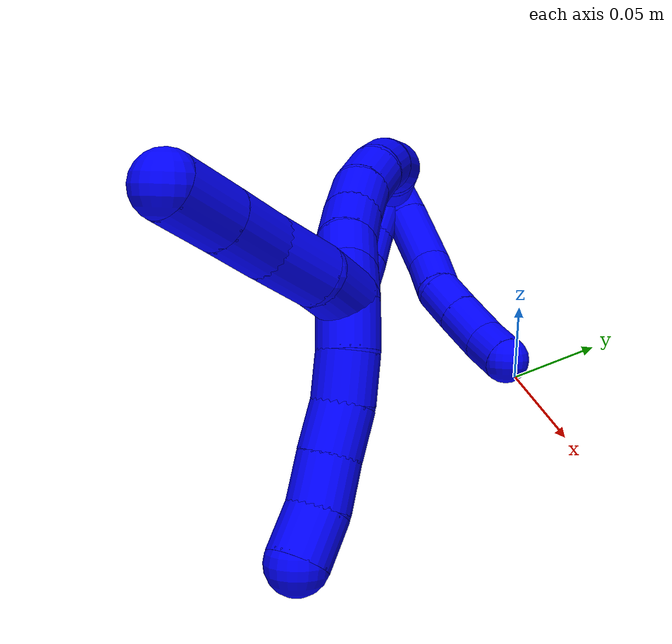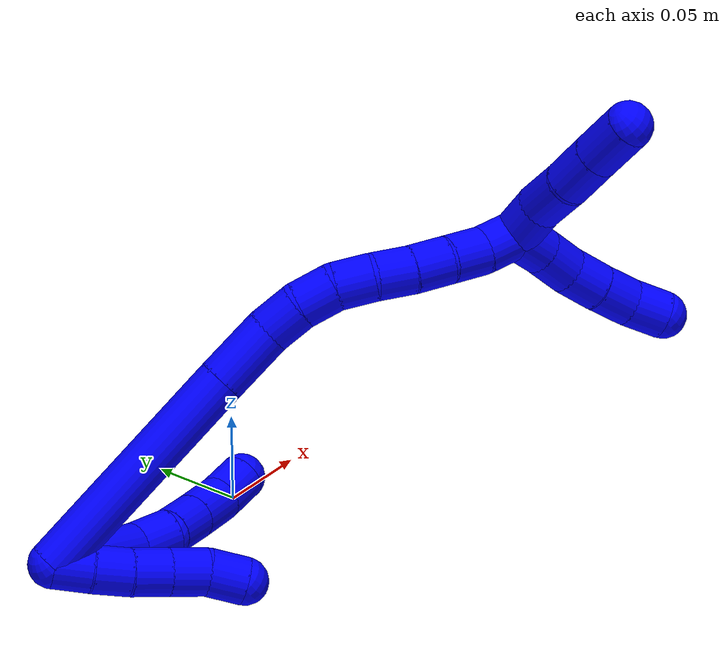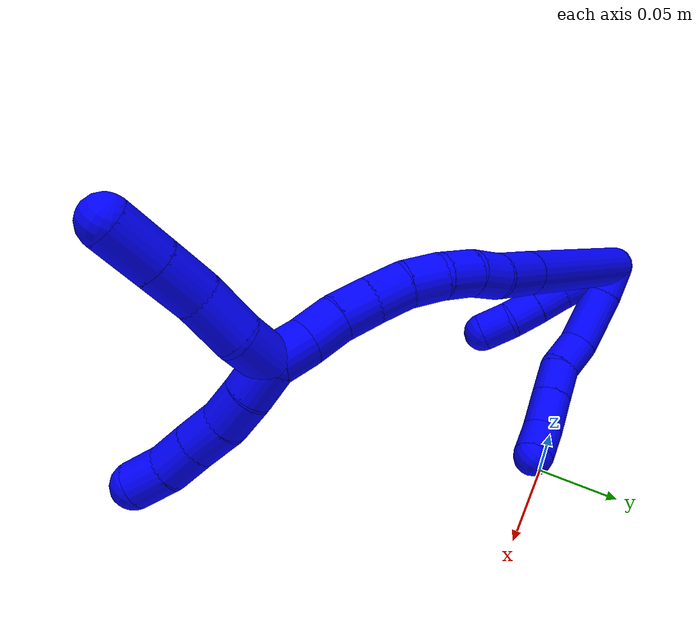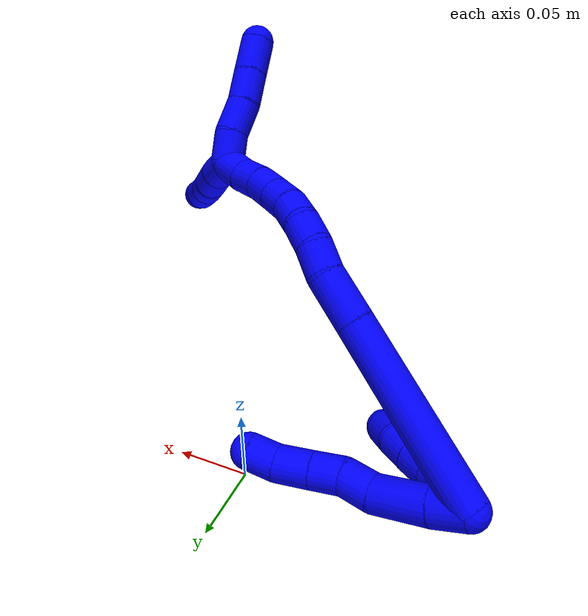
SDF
<sdf version="1.7">
 <world name="default">
  <model name="1">
   <static>0</static>
   <link name="1">
    <collision name="collision-cylinder-e_1_2_8">
     <pose>0.007035 0.00235 -0.008774 -2.87991 0.658958 -2.40685</pose>
     <geometry><cylinder><radius>0.0125</radius><length>0.022978</length></cylinder></geometry>
     <surface>
      <friction><ode><mu>1.16</mu><mu2>1.16</mu2><slip1>0</slip1><slip2>0</slip2></ode></friction>
      <contact><ode><kp>1e+06</kp><kd>1</kd><max_vel>0</max_vel><min_depth>0.001</min_depth></ode></contact>
     </surface>
    </collision>
    <visual name="visual-cylinder-e_1_2_8">
     <pose>0.007035 0.00235 -0.008774 -2.87991 0.658958 -2.40685</pose>
     <geometry><cylinder><radius>0.0125</radius><length>0.022978</length></cylinder></geometry>
     <material><ambient>0 0 1 1</ambient></material>
    </visual>
    <collision name="collision-cylinder-e_2_8_9">
     <pose>0.026515 0.006937 -0.031574 -2.98342 0.719561 -2.72628</pose>
     <geometry><cylinder><radius>0.0125</radius><length>0.037769</length></cylinder></geometry>
     <surface>
      <friction><ode><mu>1.16</mu><mu2>1.16</mu2><slip1>0</slip1><slip2>0</slip2></ode></friction>
      <contact><ode><kp>1e+06</kp><kd>1</kd><max_vel>0</max_vel><min_depth>0.001</min_depth></ode></contact>
     </surface>
    </collision>
    <visual name="visual-cylinder-e_2_8_9">
     <pose>0.026515 0.006937 -0.031574 -2.98342 0.719561 -2.72628</pose>
     <geometry><cylinder><radius>0.0125</radius><length>0.037769</length></cylinder></geometry>
     <material><ambient>0 0 1 1</ambient></material>
    </visual>
    <collision name="collision-cylinder-e_3_9_10">
     <pose>0.047963 0.008152 -0.052252 2.98902 0.928774 2.83875</pose>
     <geometry><cylinder><radius>0.0125</radius><length>0.022479</length></cylinder></geometry>
     <surface>
      <friction><ode><mu>1.16</mu><mu2>1.16</mu2><slip1>0</slip1><slip2>0</slip2></ode></friction>
      <contact><ode><kp>1e+06</kp><kd>1</kd><max_vel>0</max_vel><min_depth>0.001</min_depth></ode></contact>
     </surface>
    </collision>
    <visual name="visual-cylinder-e_3_9_10">
     <pose>0.047963 0.008152 -0.052252 2.98902 0.928774 2.83875</pose>
     <geometry><cylinder><radius>0.0125</radius><length>0.022479</length></cylinder></geometry>
     <material><ambient>0 0 1 1</ambient></material>
    </visual>
    <collision name="collision-cylinder-e_4_10_11">
     <pose>0.065292 0.009802 -0.064951 -2.72537 0.899784 -2.31715</pose>
     <geometry><cylinder><radius>0.0125</radius><length>0.021265</length></cylinder></geometry>
     <surface>
      <friction><ode><mu>1.16</mu><mu2>1.16</mu2><slip1>0</slip1><slip2>0</slip2></ode></friction>
      <contact><ode><kp>1e+06</kp><kd>1</kd><max_vel>0</max_vel><min_depth>0.001</min_depth></ode></contact>
     </surface>
    </collision>
    <visual name="visual-cylinder-e_4_10_11">
     <pose>0.065292 0.009802 -0.064951 -2.72537 0.899784 -2.31715</pose>
     <geometry><cylinder><radius>0.0125</radius><length>0.021265</length></cylinder></geometry>
     <material><ambient>0 0 1 1</ambient></material>
    </visual>
    <collision name="collision-cylinder-e_5_11_12">
     <pose>0.083612 0.015632 -0.077795 -2.70672 0.927309 -2.30947</pose>
     <geometry><cylinder><radius>0.0125</radius><length>0.024981</length></cylinder></geometry>
     <surface>
      <friction><ode><mu>1.16</mu><mu2>1.16</mu2><slip1>0</slip1><slip2>0</slip2></ode></friction>
      <contact><ode><kp>1e+06</kp><kd>1</kd><max_vel>0</max_vel><min_depth>0.001</min_depth></ode></contact>
     </surface>
    </collision>
    <visual name="visual-cylinder-e_5_11_12">
     <pose>0.083612 0.015632 -0.077795 -2.70672 0.927309 -2.30947</pose>
     <geometry><cylinder><radius>0.0125</radius><length>0.024981</length></cylinder></geometry>
     <material><ambient>0 0 1 1</ambient></material>
    </visual>
    <collision name="collision-cylinder-e_6_12_6">
     <pose>0.102989 0.020128 -0.088526 -2.81369 1.1539 -2.64375</pose>
     <geometry><cylinder><radius>0.0125</radius><length>0.020527</length></cylinder></geometry>
     <surface>
      <friction><ode><mu>1.16</mu><mu2>1.16</mu2><slip1>0</slip1><slip2>0</slip2></ode></friction>
      <contact><ode><kp>1e+06</kp><kd>1</kd><max_vel>0</max_vel><min_depth>0.001</min_depth></ode></contact>
     </surface>
    </collision>
    <visual name="visual-cylinder-e_6_12_6">
     <pose>0.102989 0.020128 -0.088526 -2.81369 1.1539 -2.64375</pose>
     <geometry><cylinder><radius>0.0125</radius><length>0.020527</length></cylinder></geometry>
     <material><ambient>0 0 1 1</ambient></material>
    </visual>
    <collision name="collision-cylinder-e_1_2_13">
     <pose>0.004158 -0.005128 -0.007511 2.54255 0.428807 1.22832</pose>
     <geometry><cylinder><radius>0.0125</radius><length>0.02</length></cylinder></geometry>
     <surface>
      <friction><ode><mu>1.16</mu><mu2>1.16</mu2><slip1>0</slip1><slip2>0</slip2></ode></friction>
      <contact><ode><kp>1e+06</kp><kd>1</kd><max_vel>0</max_vel><min_depth>0.001</min_depth></ode></contact>
     </surface>
    </collision>
    <visual name="visual-cylinder-e_1_2_13">
     <pose>0.004158 -0.005128 -0.007511 2.54255 0.428807 1.22832</pose>
     <geometry><cylinder><radius>0.0125</radius><length>0.02</length></cylinder></geometry>
     <material><ambient>0 0 1 1</ambient></material>
    </visual>
    <collision name="collision-cylinder-e_2_13_14">
     <pose>0.012977 -0.014766 -0.022634 2.60675 0.484868 1.4685</pose>
     <geometry><cylinder><radius>0.0125</radius><length>0.02</length></cylinder></geometry>
     <surface>
      <friction><ode><mu>1.16</mu><mu2>1.16</mu2><slip1>0</slip1><slip2>0</slip2></ode></friction>
      <contact><ode><kp>1e+06</kp><kd>1</kd><max_vel>0</max_vel><min_depth>0.001</min_depth></ode></contact>
     </surface>
    </collision>
    <visual name="visual-cylinder-e_2_13_14">
     <pose>0.012977 -0.014766 -0.022634 2.60675 0.484868 1.4685</pose>
     <geometry><cylinder><radius>0.0125</radius><length>0.02</length></cylinder></geometry>
     <material><ambient>0 0 1 1</ambient></material>
    </visual>
    <collision name="collision-cylinder-e_3_14_15">
     <pose>0.023086 -0.023362 -0.037568 2.63249 0.576204 1.70052</pose>
     <geometry><cylinder><radius>0.0125</radius><length>0.02</length></cylinder></geometry>
     <surface>
      <friction><ode><mu>1.16</mu><mu2>1.16</mu2><slip1>0</slip1><slip2>0</slip2></ode></friction>
      <contact><ode><kp>1e+06</kp><kd>1</kd><max_vel>0</max_vel><min_depth>0.001</min_depth></ode></contact>
     </surface>
    </collision>
    <visual name="visual-cylinder-e_3_14_15">
     <pose>0.023086 -0.023362 -0.037568 2.63249 0.576204 1.70052</pose>
     <geometry><cylinder><radius>0.0125</radius><length>0.02</length></cylinder></geometry>
     <material><ambient>0 0 1 1</ambient></material>
    </visual>
    <collision name="collision-cylinder-e_4_15_16">
     <pose>0.033892 -0.031894 -0.052069 2.58724 0.565457 1.59169</pose>
     <geometry><cylinder><radius>0.0125</radius><length>0.02</length></cylinder></geometry>
     <surface>
      <friction><ode><mu>1.16</mu><mu2>1.16</mu2><slip1>0</slip1><slip2>0</slip2></ode></friction>
      <contact><ode><kp>1e+06</kp><kd>1</kd><max_vel>0</max_vel><min_depth>0.001</min_depth></ode></contact>
     </surface>
    </collision>
    <visual name="visual-cylinder-e_4_15_16">
     <pose>0.033892 -0.031894 -0.052069 2.58724 0.565457 1.59169</pose>
     <geometry><cylinder><radius>0.0125</radius><length>0.02</length></cylinder></geometry>
     <material><ambient>0 0 1 1</ambient></material>
    </visual>
    <collision name="collision-cylinder-e_5_16_5">
     <pose>0.042385 -0.041432 -0.067262 2.57546 0.318782 1.00977</pose>
     <geometry><cylinder><radius>0.0125</radius><length>0.02</length></cylinder></geometry>
     <surface>
      <friction><ode><mu>1.16</mu><mu2>1.16</mu2><slip1>0</slip1><slip2>0</slip2></ode></friction>
      <contact><ode><kp>1e+06</kp><kd>1</kd><max_vel>0</max_vel><min_depth>0.001</min_depth></ode></contact>
     </surface>
    </collision>
    <visual name="visual-cylinder-e_5_16_5">
     <pose>0.042385 -0.041432 -0.067262 2.57546 0.318782 1.00977</pose>
     <geometry><cylinder><radius>0.0125</radius><length>0.02</length></cylinder></geometry>
     <material><ambient>0 0 1 1</ambient></material>
    </visual>
    <collision name="collision-cylinder-e_1_2_17">
     <pose>0.057682 -0.02414 0.001893 1.49252 1.17335 1.10225</pose>
     <geometry><cylinder><radius>0.0125</radius><length>0.125116</length></cylinder></geometry>
     <surface>
      <friction><ode><mu>1.16</mu><mu2>1.16</mu2><slip1>0</slip1><slip2>0</slip2></ode></friction>
      <contact><ode><kp>1e+06</kp><kd>1</kd><max_vel>0</max_vel><min_depth>0.001</min_depth></ode></contact>
     </surface>
    </collision>
    <visual name="visual-cylinder-e_1_2_17">
     <pose>0.057682 -0.02414 0.001893 1.49252 1.17335 1.10225</pose>
     <geometry><cylinder><radius>0.0125</radius><length>0.125116</length></cylinder></geometry>
     <material><ambient>0 0 1 1</ambient></material>
    </visual>
    <collision name="collision-cylinder-e_2_17_18">
     <pose>0.131139 -0.05495 0.004052 1.53109 1.17047 1.13419</pose>
     <geometry><cylinder><radius>0.0125</radius><length>0.034259</length></cylinder></geometry>
     <surface>
      <friction><ode><mu>1.16</mu><mu2>1.16</mu2><slip1>0</slip1><slip2>0</slip2></ode></friction>
      <contact><ode><kp>1e+06</kp><kd>1</kd><max_vel>0</max_vel><min_depth>0.001</min_depth></ode></contact>
     </surface>
    </collision>
    <visual name="visual-cylinder-e_2_17_18">
     <pose>0.131139 -0.05495 0.004052 1.53109 1.17047 1.13419</pose>
     <geometry><cylinder><radius>0.0125</radius><length>0.034259</length></cylinder></geometry>
     <material><ambient>0 0 1 1</ambient></material>
    </visual>
    <collision name="collision-cylinder-e_3_18_19">
     <pose>0.155313 -0.067552 0.004344 1.56622 0.955907 0.952176</pose>
     <geometry><cylinder><radius>0.0125</radius><length>0.020565</length></cylinder></geometry>
     <surface>
      <friction><ode><mu>1.16</mu><mu2>1.16</mu2><slip1>0</slip1><slip2>0</slip2></ode></friction>
      <contact><ode><kp>1e+06</kp><kd>1</kd><max_vel>0</max_vel><min_depth>0.001</min_depth></ode></contact>
     </surface>
    </collision>
    <visual name="visual-cylinder-e_3_18_19">
     <pose>0.155313 -0.067552 0.004344 1.56622 0.955907 0.952176</pose>
     <geometry><cylinder><radius>0.0125</radius><length>0.020565</length></cylinder></geometry>
     <material><ambient>0 0 1 1</ambient></material>
    </visual>
    <collision name="collision-cylinder-e_4_19_20">
     <pose>0.171654 -0.079183 0.002193 1.93584 0.915689 1.24257</pose>
     <geometry><cylinder><radius>0.0125</radius><length>0.020029</length></cylinder></geometry>
     <surface>
      <friction><ode><mu>1.16</mu><mu2>1.16</mu2><slip1>0</slip1><slip2>0</slip2></ode></friction>
      <contact><ode><kp>1e+06</kp><kd>1</kd><max_vel>0</max_vel><min_depth>0.001</min_depth></ode></contact>
     </surface>
    </collision>
    <visual name="visual-cylinder-e_4_19_20">
     <pose>0.171654 -0.079183 0.002193 1.93584 0.915689 1.24257</pose>
     <geometry><cylinder><radius>0.0125</radius><length>0.020029</length></cylinder></geometry>
     <material><ambient>0 0 1 1</ambient></material>
    </visual>
    <collision name="collision-cylinder-e_5_20_21">
     <pose>0.186323 -0.090768 -0.004477 2.22273 0.737605 1.32632</pose>
     <geometry><cylinder><radius>0.0125</radius><length>0.020009</length></cylinder></geometry>
     <surface>
      <friction><ode><mu>1.16</mu><mu2>1.16</mu2><slip1>0</slip1><slip2>0</slip2></ode></friction>
      <contact><ode><kp>1e+06</kp><kd>1</kd><max_vel>0</max_vel><min_depth>0.001</min_depth></ode></contact>
     </surface>
    </collision>
    <visual name="visual-cylinder-e_5_20_21">
     <pose>0.186323 -0.090768 -0.004477 2.22273 0.737605 1.32632</pose>
     <geometry><cylinder><radius>0.0125</radius><length>0.020009</length></cylinder></geometry>
     <material><ambient>0 0 1 1</ambient></material>
    </visual>
    <collision name="collision-cylinder-e_6_21_22">
     <pose>0.199889 -0.101075 -0.014793 2.49221 0.751877 1.72938</pose>
     <geometry><cylinder><radius>0.0125</radius><length>0.020022</length></cylinder></geometry>
     <surface>
      <friction><ode><mu>1.16</mu><mu2>1.16</mu2><slip1>0</slip1><slip2>0</slip2></ode></friction>
      <contact><ode><kp>1e+06</kp><kd>1</kd><max_vel>0</max_vel><min_depth>0.001</min_depth></ode></contact>
     </surface>
    </collision>
    <visual name="visual-cylinder-e_6_21_22">
     <pose>0.199889 -0.101075 -0.014793 2.49221 0.751877 1.72938</pose>
     <geometry><cylinder><radius>0.0125</radius><length>0.020022</length></cylinder></geometry>
     <material><ambient>0 0 1 1</ambient></material>
    </visual>
    <collision name="collision-cylinder-e_7_22_23">
     <pose>0.214139 -0.109443 -0.026046 2.51304 0.834922 1.87671</pose>
     <geometry><cylinder><radius>0.0125</radius><length>0.02</length></cylinder></geometry>
     <surface>
      <friction><ode><mu>1.16</mu><mu2>1.16</mu2><slip1>0</slip1><slip2>0</slip2></ode></friction>
      <contact><ode><kp>1e+06</kp><kd>1</kd><max_vel>0</max_vel><min_depth>0.001</min_depth></ode></contact>
     </surface>
    </collision>
    <visual name="visual-cylinder-e_7_22_23">
     <pose>0.214139 -0.109443 -0.026046 2.51304 0.834922 1.87671</pose>
     <geometry><cylinder><radius>0.0125</radius><length>0.02</length></cylinder></geometry>
     <material><ambient>0 0 1 1</ambient></material>
    </visual>
    <collision name="collision-cylinder-e_8_23_24">
     <pose>0.229105 -0.115964 -0.037502 2.73783 0.85621 2.29836</pose>
     <geometry><cylinder><radius>0.0125</radius><length>0.02</length></cylinder></geometry>
     <surface>
      <friction><ode><mu>1.16</mu><mu2>1.16</mu2><slip1>0</slip1><slip2>0</slip2></ode></friction>
      <contact><ode><kp>1e+06</kp><kd>1</kd><max_vel>0</max_vel><min_depth>0.001</min_depth></ode></contact>
     </surface>
    </collision>
    <visual name="visual-cylinder-e_8_23_24">
     <pose>0.229105 -0.115964 -0.037502 2.73783 0.85621 2.29836</pose>
     <geometry><cylinder><radius>0.0125</radius><length>0.02</length></cylinder></geometry>
     <material><ambient>0 0 1 1</ambient></material>
    </visual>
    <collision name="collision-cylinder-e_9_24_1">
     <pose>0.245128 -0.121498 -0.047946 2.55129 1.01019 2.13613</pose>
     <geometry><cylinder><radius>0.0125</radius><length>0.02</length></cylinder></geometry>
     <surface>
      <friction><ode><mu>1.16</mu><mu2>1.16</mu2><slip1>0</slip1><slip2>0</slip2></ode></friction>
      <contact><ode><kp>1e+06</kp><kd>1</kd><max_vel>0</max_vel><min_depth>0.001</min_depth></ode></contact>
     </surface>
    </collision>
    <visual name="visual-cylinder-e_9_24_1">
     <pose>0.245128 -0.121498 -0.047946 2.55129 1.01019 2.13613</pose>
     <geometry><cylinder><radius>0.0125</radius><length>0.02</length></cylinder></geometry>
     <material><ambient>0 0 1 1</ambient></material>
    </visual>
    <collision name="collision-cylinder-e_1_1_25">
     <pose>0.25573 -0.124941 -0.062121 3.09217 0.214954 2.69121</pose>
     <geometry><cylinder><radius>0.0125</radius><length>0.02</length></cylinder></geometry>
     <surface>
      <friction><ode><mu>1.16</mu><mu2>1.16</mu2><slip1>0</slip1><slip2>0</slip2></ode></friction>
      <contact><ode><kp>1e+06</kp><kd>1</kd><max_vel>0</max_vel><min_depth>0.001</min_depth></ode></contact>
     </surface>
    </collision>
    <visual name="visual-cylinder-e_1_1_25">
     <pose>0.25573 -0.124941 -0.062121 3.09217 0.214954 2.69121</pose>
     <geometry><cylinder><radius>0.0125</radius><length>0.02</length></cylinder></geometry>
     <material><ambient>0 0 1 1</ambient></material>
    </visual>
    <collision name="collision-cylinder-e_2_25_26">
     <pose>0.25909 -0.126614 -0.081731 3.02136 0.122963 1.59331</pose>
     <geometry><cylinder><radius>0.0125</radius><length>0.02</length></cylinder></geometry>
     <surface>
      <friction><ode><mu>1.16</mu><mu2>1.16</mu2><slip1>0</slip1><slip2>0</slip2></ode></friction>
      <contact><ode><kp>1e+06</kp><kd>1</kd><max_vel>0</max_vel><min_depth>0.001</min_depth></ode></contact>
     </surface>
    </collision>
    <visual name="visual-cylinder-e_2_25_26">
     <pose>0.25909 -0.126614 -0.081731 3.02136 0.122963 1.59331</pose>
     <geometry><cylinder><radius>0.0125</radius><length>0.02</length></cylinder></geometry>
     <material><ambient>0 0 1 1</ambient></material>
    </visual>
    <collision name="collision-cylinder-e_3_26_27">
     <pose>0.261925 -0.130824 -0.100981 2.83057 0.161536 0.953193</pose>
     <geometry><cylinder><radius>0.0125</radius><length>0.02</length></cylinder></geometry>
     <surface>
      <friction><ode><mu>1.16</mu><mu2>1.16</mu2><slip1>0</slip1><slip2>0</slip2></ode></friction>
      <contact><ode><kp>1e+06</kp><kd>1</kd><max_vel>0</max_vel><min_depth>0.001</min_depth></ode></contact>
     </surface>
    </collision>
    <visual name="visual-cylinder-e_3_26_27">
     <pose>0.261925 -0.130824 -0.100981 2.83057 0.161536 0.953193</pose>
     <geometry><cylinder><radius>0.0125</radius><length>0.02</length></cylinder></geometry>
     <material><ambient>0 0 1 1</ambient></material>
    </visual>
    <collision name="collision-cylinder-e_4_27_28">
     <pose>0.265727 -0.136576 -0.119743 2.85784 0.22123 1.32184</pose>
     <geometry><cylinder><radius>0.0125</radius><length>0.02</length></cylinder></geometry>
     <surface>
      <friction><ode><mu>1.16</mu><mu2>1.16</mu2><slip1>0</slip1><slip2>0</slip2></ode></friction>
      <contact><ode><kp>1e+06</kp><kd>1</kd><max_vel>0</max_vel><min_depth>0.001</min_depth></ode></contact>
     </surface>
    </collision>
    <visual name="visual-cylinder-e_4_27_28">
     <pose>0.265727 -0.136576 -0.119743 2.85784 0.22123 1.32184</pose>
     <geometry><cylinder><radius>0.0125</radius><length>0.02</length></cylinder></geometry>
     <material><ambient>0 0 1 1</ambient></material>
    </visual>
    <collision name="collision-cylinder-e_5_28_4">
     <pose>0.270432 -0.143847 -0.137659 2.65352 0.253734 0.946814</pose>
     <geometry><cylinder><radius>0.0125</radius><length>0.02</length></cylinder></geometry>
     <surface>
      <friction><ode><mu>1.16</mu><mu2>1.16</mu2><slip1>0</slip1><slip2>0</slip2></ode></friction>
      <contact><ode><kp>1e+06</kp><kd>1</kd><max_vel>0</max_vel><min_depth>0.001</min_depth></ode></contact>
     </surface>
    </collision>
    <visual name="visual-cylinder-e_5_28_4">
     <pose>0.270432 -0.143847 -0.137659 2.65352 0.253734 0.946814</pose>
     <geometry><cylinder><radius>0.0125</radius><length>0.02</length></cylinder></geometry>
     <material><ambient>0 0 1 1</ambient></material>
    </visual>
    <collision name="collision-cylinder-e_1_1_29">
     <pose>0.259709 -0.132955 -0.047726 1.07132 0.563147 0.34006</pose>
     <geometry><cylinder><radius>0.0125</radius><length>0.022896</length></cylinder></geometry>
     <surface>
      <friction><ode><mu>1.16</mu><mu2>1.16</mu2><slip1>0</slip1><slip2>0</slip2></ode></friction>
      <contact><ode><kp>1e+06</kp><kd>1</kd><max_vel>0</max_vel><min_depth>0.001</min_depth></ode></contact>
     </surface>
    </collision>
    <visual name="visual-cylinder-e_1_1_29">
     <pose>0.259709 -0.132955 -0.047726 1.07132 0.563147 0.34006</pose>
     <geometry><cylinder><radius>0.0125</radius><length>0.022896</length></cylinder></geometry>
     <material><ambient>0 0 1 1</ambient></material>
    </visual>
    <collision name="collision-cylinder-e_2_29_30">
     <pose>0.269891 -0.152583 -0.037892 1.13387 0.320006 0.204771</pose>
     <geometry><cylinder><radius>0.0125</radius><length>0.025883</length></cylinder></geometry>
     <surface>
      <friction><ode><mu>1.16</mu><mu2>1.16</mu2><slip1>0</slip1><slip2>0</slip2></ode></friction>
      <contact><ode><kp>1e+06</kp><kd>1</kd><max_vel>0</max_vel><min_depth>0.001</min_depth></ode></contact>
     </surface>
    </collision>
    <visual name="visual-cylinder-e_2_29_30">
     <pose>0.269891 -0.152583 -0.037892 1.13387 0.320006 0.204771</pose>
     <geometry><cylinder><radius>0.0125</radius><length>0.025883</length></cylinder></geometry>
     <material><ambient>0 0 1 1</ambient></material>
    </visual>
    <collision name="collision-cylinder-e_3_30_31">
     <pose>0.279603 -0.1735 -0.028144 1.13567 0.481623 0.31079</pose>
     <geometry><cylinder><radius>0.0125</radius><length>0.024354</length></cylinder></geometry>
     <surface>
      <friction><ode><mu>1.16</mu><mu2>1.16</mu2><slip1>0</slip1><slip2>0</slip2></ode></friction>
      <contact><ode><kp>1e+06</kp><kd>1</kd><max_vel>0</max_vel><min_depth>0.001</min_depth></ode></contact>
     </surface>
    </collision>
    <visual name="visual-cylinder-e_3_30_31">
     <pose>0.279603 -0.1735 -0.028144 1.13567 0.481623 0.31079</pose>
     <geometry><cylinder><radius>0.0125</radius><length>0.024354</length></cylinder></geometry>
     <material><ambient>0 0 1 1</ambient></material>
    </visual>
    <collision name="collision-cylinder-e_4_31_3">
     <pose>0.291373 -0.194171 -0.018654 1.14464 0.473814 0.308623</pose>
     <geometry><cylinder><radius>0.0125</radius><length>0.026867</length></cylinder></geometry>
     <surface>
      <friction><ode><mu>1.16</mu><mu2>1.16</mu2><slip1>0</slip1><slip2>0</slip2></ode></friction>
      <contact><ode><kp>1e+06</kp><kd>1</kd><max_vel>0</max_vel><min_depth>0.001</min_depth></ode></contact>
     </surface>
    </collision>
    <visual name="visual-cylinder-e_4_31_3">
     <pose>0.291373 -0.194171 -0.018654 1.14464 0.473814 0.308623</pose>
     <geometry><cylinder><radius>0.0125</radius><length>0.026867</length></cylinder></geometry>
     <material><ambient>0 0 1 1</ambient></material>
    </visual>
    <collision name="collision-sphere-3">
     <pose>0.297503 -0.205055 -0.013713 0 -0 0</pose>
     <geometry><sphere><radius>0.0125</radius></sphere></geometry>
     <surface>
      <friction><ode><mu>1.16</mu><mu2>1.16</mu2><slip1>0</slip1><slip2>0</slip2></ode></friction>
      <contact><ode><kp>1e+06</kp><kd>1</kd><max_vel>0</max_vel><min_depth>0.001</min_depth></ode></contact>
     </surface>
    </collision>
    <visual name="visual-sphere-3">
     <pose>0.297503 -0.205055 -0.013713 0 -0 0</pose>
     <geometry><sphere><radius>0.0125</radius></sphere></geometry>
     <material><ambient>0 0 1 1</ambient></material>
    </visual>
    <collision name="collision-sphere-31">
     <pose>0.285244 -0.183286 -0.023595 0 -0 0</pose>
     <geometry><sphere><radius>0.0125</radius></sphere></geometry>
     <surface>
      <friction><ode><mu>1.16</mu><mu2>1.16</mu2><slip1>0</slip1><slip2>0</slip2></ode></friction>
      <contact><ode><kp>1e+06</kp><kd>1</kd><max_vel>0</max_vel><min_depth>0.001</min_depth></ode></contact>
     </surface>
    </collision>
    <visual name="visual-sphere-31">
     <pose>0.285244 -0.183286 -0.023595 0 -0 0</pose>
     <geometry><sphere><radius>0.0125</radius></sphere></geometry>
     <material><ambient>0 0 1 1</ambient></material>
    </visual>
    <collision name="collision-sphere-30">
     <pose>0.273962 -0.163713 -0.032693 0 -0 0</pose>
     <geometry><sphere><radius>0.0125</radius></sphere></geometry>
     <surface>
      <friction><ode><mu>1.16</mu><mu2>1.16</mu2><slip1>0</slip1><slip2>0</slip2></ode></friction>
      <contact><ode><kp>1e+06</kp><kd>1</kd><max_vel>0</max_vel><min_depth>0.001</min_depth></ode></contact>
     </surface>
    </collision>
    <visual name="visual-sphere-30">
     <pose>0.273962 -0.163713 -0.032693 0 -0 0</pose>
     <geometry><sphere><radius>0.0125</radius></sphere></geometry>
     <material><ambient>0 0 1 1</ambient></material>
    </visual>
    <collision name="collision-sphere-29">
     <pose>0.26582 -0.141453 -0.04309 0 -0 0</pose>
     <geometry><sphere><radius>0.0125</radius></sphere></geometry>
     <surface>
      <friction><ode><mu>1.16</mu><mu2>1.16</mu2><slip1>0</slip1><slip2>0</slip2></ode></friction>
      <contact><ode><kp>1e+06</kp><kd>1</kd><max_vel>0</max_vel><min_depth>0.001</min_depth></ode></contact>
     </surface>
    </collision>
    <visual name="visual-sphere-29">
     <pose>0.26582 -0.141453 -0.04309 0 -0 0</pose>
     <geometry><sphere><radius>0.0125</radius></sphere></geometry>
     <material><ambient>0 0 1 1</ambient></material>
    </visual>
    <collision name="collision-sphere-4">
     <pose>0.272942 -0.148386 -0.146208 0 -0 0</pose>
     <geometry><sphere><radius>0.0125</radius></sphere></geometry>
     <surface>
      <friction><ode><mu>1.16</mu><mu2>1.16</mu2><slip1>0</slip1><slip2>0</slip2></ode></friction>
      <contact><ode><kp>1e+06</kp><kd>1</kd><max_vel>0</max_vel><min_depth>0.001</min_depth></ode></contact>
     </surface>
    </collision>
    <visual name="visual-sphere-4">
     <pose>0.272942 -0.148386 -0.146208 0 -0 0</pose>
     <geometry><sphere><radius>0.0125</radius></sphere></geometry>
     <material><ambient>0 0 1 1</ambient></material>
    </visual>
    <collision name="collision-sphere-28">
     <pose>0.267922 -0.139308 -0.129109 0 -0 0</pose>
     <geometry><sphere><radius>0.0125</radius></sphere></geometry>
     <surface>
      <friction><ode><mu>1.16</mu><mu2>1.16</mu2><slip1>0</slip1><slip2>0</slip2></ode></friction>
      <contact><ode><kp>1e+06</kp><kd>1</kd><max_vel>0</max_vel><min_depth>0.001</min_depth></ode></contact>
     </surface>
    </collision>
    <visual name="visual-sphere-28">
     <pose>0.267922 -0.139308 -0.129109 0 -0 0</pose>
     <geometry><sphere><radius>0.0125</radius></sphere></geometry>
     <material><ambient>0 0 1 1</ambient></material>
    </visual>
    <collision name="collision-sphere-27">
     <pose>0.263533 -0.133845 -0.110377 0 -0 0</pose>
     <geometry><sphere><radius>0.0125</radius></sphere></geometry>
     <surface>
      <friction><ode><mu>1.16</mu><mu2>1.16</mu2><slip1>0</slip1><slip2>0</slip2></ode></friction>
      <contact><ode><kp>1e+06</kp><kd>1</kd><max_vel>0</max_vel><min_depth>0.001</min_depth></ode></contact>
     </surface>
    </collision>
    <visual name="visual-sphere-27">
     <pose>0.263533 -0.133845 -0.110377 0 -0 0</pose>
     <geometry><sphere><radius>0.0125</radius></sphere></geometry>
     <material><ambient>0 0 1 1</ambient></material>
    </visual>
    <collision name="collision-sphere-26">
     <pose>0.260316 -0.127804 -0.091584 0 -0 0</pose>
     <geometry><sphere><radius>0.0125</radius></sphere></geometry>
     <surface>
      <friction><ode><mu>1.16</mu><mu2>1.16</mu2><slip1>0</slip1><slip2>0</slip2></ode></friction>
      <contact><ode><kp>1e+06</kp><kd>1</kd><max_vel>0</max_vel><min_depth>0.001</min_depth></ode></contact>
     </surface>
    </collision>
    <visual name="visual-sphere-26">
     <pose>0.260316 -0.127804 -0.091584 0 -0 0</pose>
     <geometry><sphere><radius>0.0125</radius></sphere></geometry>
     <material><ambient>0 0 1 1</ambient></material>
    </visual>
    <collision name="collision-sphere-25">
     <pose>0.257863 -0.125423 -0.071879 0 -0 0</pose>
     <geometry><sphere><radius>0.0125</radius></sphere></geometry>
     <surface>
      <friction><ode><mu>1.16</mu><mu2>1.16</mu2><slip1>0</slip1><slip2>0</slip2></ode></friction>
      <contact><ode><kp>1e+06</kp><kd>1</kd><max_vel>0</max_vel><min_depth>0.001</min_depth></ode></contact>
     </surface>
    </collision>
    <visual name="visual-sphere-25">
     <pose>0.257863 -0.125423 -0.071879 0 -0 0</pose>
     <geometry><sphere><radius>0.0125</radius></sphere></geometry>
     <material><ambient>0 0 1 1</ambient></material>
    </visual>
    <collision name="collision-sphere-1">
     <pose>0.253597 -0.124458 -0.052363 0 -0 0</pose>
     <geometry><sphere><radius>0.0125</radius></sphere></geometry>
     <surface>
      <friction><ode><mu>1.16</mu><mu2>1.16</mu2><slip1>0</slip1><slip2>0</slip2></ode></friction>
      <contact><ode><kp>1e+06</kp><kd>1</kd><max_vel>0</max_vel><min_depth>0.001</min_depth></ode></contact>
     </surface>
    </collision>
    <visual name="visual-sphere-1">
     <pose>0.253597 -0.124458 -0.052363 0 -0 0</pose>
     <geometry><sphere><radius>0.0125</radius></sphere></geometry>
     <material><ambient>0 0 1 1</ambient></material>
    </visual>
    <collision name="collision-sphere-24">
     <pose>0.236659 -0.118539 -0.043528 0 -0 0</pose>
     <geometry><sphere><radius>0.0125</radius></sphere></geometry>
     <surface>
      <friction><ode><mu>1.16</mu><mu2>1.16</mu2><slip1>0</slip1><slip2>0</slip2></ode></friction>
      <contact><ode><kp>1e+06</kp><kd>1</kd><max_vel>0</max_vel><min_depth>0.001</min_depth></ode></contact>
     </surface>
    </collision>
    <visual name="visual-sphere-24">
     <pose>0.236659 -0.118539 -0.043528 0 -0 0</pose>
     <geometry><sphere><radius>0.0125</radius></sphere></geometry>
     <material><ambient>0 0 1 1</ambient></material>
    </visual>
    <collision name="collision-sphere-23">
     <pose>0.221551 -0.11339 -0.031476 0 -0 0</pose>
     <geometry><sphere><radius>0.0125</radius></sphere></geometry>
     <surface>
      <friction><ode><mu>1.16</mu><mu2>1.16</mu2><slip1>0</slip1><slip2>0</slip2></ode></friction>
      <contact><ode><kp>1e+06</kp><kd>1</kd><max_vel>0</max_vel><min_depth>0.001</min_depth></ode></contact>
     </surface>
    </collision>
    <visual name="visual-sphere-23">
     <pose>0.221551 -0.11339 -0.031476 0 -0 0</pose>
     <geometry><sphere><radius>0.0125</radius></sphere></geometry>
     <material><ambient>0 0 1 1</ambient></material>
    </visual>
    <collision name="collision-sphere-22">
     <pose>0.206726 -0.105496 -0.020617 0 -0 0</pose>
     <geometry><sphere><radius>0.0125</radius></sphere></geometry>
     <surface>
      <friction><ode><mu>1.16</mu><mu2>1.16</mu2><slip1>0</slip1><slip2>0</slip2></ode></friction>
      <contact><ode><kp>1e+06</kp><kd>1</kd><max_vel>0</max_vel><min_depth>0.001</min_depth></ode></contact>
     </surface>
    </collision>
    <visual name="visual-sphere-22">
     <pose>0.206726 -0.105496 -0.020617 0 -0 0</pose>
     <geometry><sphere><radius>0.0125</radius></sphere></geometry>
     <material><ambient>0 0 1 1</ambient></material>
    </visual>
    <collision name="collision-sphere-21">
     <pose>0.193051 -0.096653 -0.008969 0 -0 0</pose>
     <geometry><sphere><radius>0.0125</radius></sphere></geometry>
     <surface>
      <friction><ode><mu>1.16</mu><mu2>1.16</mu2><slip1>0</slip1><slip2>0</slip2></ode></friction>
      <contact><ode><kp>1e+06</kp><kd>1</kd><max_vel>0</max_vel><min_depth>0.001</min_depth></ode></contact>
     </surface>
    </collision>
    <visual name="visual-sphere-21">
     <pose>0.193051 -0.096653 -0.008969 0 -0 0</pose>
     <geometry><sphere><radius>0.0125</radius></sphere></geometry>
     <material><ambient>0 0 1 1</ambient></material>
    </visual>
    <collision name="collision-sphere-12">
     <pose>0.093604 0.018789 -0.084591 0 -0 0</pose>
     <geometry><sphere><radius>0.0125</radius></sphere></geometry>
     <surface>
      <friction><ode><mu>1.16</mu><mu2>1.16</mu2><slip1>0</slip1><slip2>0</slip2></ode></friction>
      <contact><ode><kp>1e+06</kp><kd>1</kd><max_vel>0</max_vel><min_depth>0.001</min_depth></ode></contact>
     </surface>
    </collision>
    <visual name="visual-sphere-12">
     <pose>0.093604 0.018789 -0.084591 0 -0 0</pose>
     <geometry><sphere><radius>0.0125</radius></sphere></geometry>
     <material><ambient>0 0 1 1</ambient></material>
    </visual>
    <collision name="collision-sphere-11">
     <pose>0.073619 0.012475 -0.070998 0 -0 0</pose>
     <geometry><sphere><radius>0.0125</radius></sphere></geometry>
     <surface>
      <friction><ode><mu>1.16</mu><mu2>1.16</mu2><slip1>0</slip1><slip2>0</slip2></ode></friction>
      <contact><ode><kp>1e+06</kp><kd>1</kd><max_vel>0</max_vel><min_depth>0.001</min_depth></ode></contact>
     </surface>
    </collision>
    <visual name="visual-sphere-11">
     <pose>0.073619 0.012475 -0.070998 0 -0 0</pose>
     <geometry><sphere><radius>0.0125</radius></sphere></geometry>
     <material><ambient>0 0 1 1</ambient></material>
    </visual>
    <collision name="collision-sphere-10">
     <pose>0.056964 0.007129 -0.058905 0 -0 0</pose>
     <geometry><sphere><radius>0.0125</radius></sphere></geometry>
     <surface>
      <friction><ode><mu>1.16</mu><mu2>1.16</mu2><slip1>0</slip1><slip2>0</slip2></ode></friction>
      <contact><ode><kp>1e+06</kp><kd>1</kd><max_vel>0</max_vel><min_depth>0.001</min_depth></ode></contact>
     </surface>
    </collision>
    <visual name="visual-sphere-10">
     <pose>0.056964 0.007129 -0.058905 0 -0 0</pose>
     <geometry><sphere><radius>0.0125</radius></sphere></geometry>
     <material><ambient>0 0 1 1</ambient></material>
    </visual>
    <collision name="collision-sphere-9">
     <pose>0.038961 0.009174 -0.0456 0 -0 0</pose>
     <geometry><sphere><radius>0.0125</radius></sphere></geometry>
     <surface>
      <friction><ode><mu>1.16</mu><mu2>1.16</mu2><slip1>0</slip1><slip2>0</slip2></ode></friction>
      <contact><ode><kp>1e+06</kp><kd>1</kd><max_vel>0</max_vel><min_depth>0.001</min_depth></ode></contact>
     </surface>
    </collision>
    <visual name="visual-sphere-9">
     <pose>0.038961 0.009174 -0.0456 0 -0 0</pose>
     <geometry><sphere><radius>0.0125</radius></sphere></geometry>
     <material><ambient>0 0 1 1</ambient></material>
    </visual>
    <collision name="collision-sphere-2">
     <geometry><sphere><radius>0.0125</radius></sphere></geometry>
     <surface>
      <friction><ode><mu>1.16</mu><mu2>1.16</mu2><slip1>0</slip1><slip2>0</slip2></ode></friction>
      <contact><ode><kp>1e+06</kp><kd>1</kd><max_vel>0</max_vel><min_depth>0.001</min_depth></ode></contact>
     </surface>
    </collision>
    <visual name="visual-sphere-2">
     <geometry><sphere><radius>0.0125</radius></sphere></geometry>
     <material><ambient>0 0 1 1</ambient></material>
    </visual>
    <collision name="collision-sphere-19">
     <pose>0.163713 -0.073484 0.004371 0 -0 0</pose>
     <geometry><sphere><radius>0.0125</radius></sphere></geometry>
     <surface>
      <friction><ode><mu>1.16</mu><mu2>1.16</mu2><slip1>0</slip1><slip2>0</slip2></ode></friction>
      <contact><ode><kp>1e+06</kp><kd>1</kd><max_vel>0</max_vel><min_depth>0.001</min_depth></ode></contact>
     </surface>
    </collision>
    <visual name="visual-sphere-19">
     <pose>0.163713 -0.073484 0.004371 0 -0 0</pose>
     <geometry><sphere><radius>0.0125</radius></sphere></geometry>
     <material><ambient>0 0 1 1</ambient></material>
    </visual>
    <collision name="collision-sphere-8">
     <pose>0.014069 0.0047 -0.017549 0 -0 0</pose>
     <geometry><sphere><radius>0.0125</radius></sphere></geometry>
     <surface>
      <friction><ode><mu>1.16</mu><mu2>1.16</mu2><slip1>0</slip1><slip2>0</slip2></ode></friction>
      <contact><ode><kp>1e+06</kp><kd>1</kd><max_vel>0</max_vel><min_depth>0.001</min_depth></ode></contact>
     </surface>
    </collision>
    <visual name="visual-sphere-8">
     <pose>0.014069 0.0047 -0.017549 0 -0 0</pose>
     <geometry><sphere><radius>0.0125</radius></sphere></geometry>
     <material><ambient>0 0 1 1</ambient></material>
    </visual>
    <collision name="collision-sphere-6">
     <pose>0.112373 0.021466 -0.09246 0 -0 0</pose>
     <geometry><sphere><radius>0.0125</radius></sphere></geometry>
     <surface>
      <friction><ode><mu>1.16</mu><mu2>1.16</mu2><slip1>0</slip1><slip2>0</slip2></ode></friction>
      <contact><ode><kp>1e+06</kp><kd>1</kd><max_vel>0</max_vel><min_depth>0.001</min_depth></ode></contact>
     </surface>
    </collision>
    <visual name="visual-sphere-6">
     <pose>0.112373 0.021466 -0.09246 0 -0 0</pose>
     <geometry><sphere><radius>0.0125</radius></sphere></geometry>
     <material><ambient>0 0 1 1</ambient></material>
    </visual>
    <collision name="collision-sphere-13">
     <pose>0.008316 -0.010256 -0.015022 0 -0 0</pose>
     <geometry><sphere><radius>0.0125</radius></sphere></geometry>
     <surface>
      <friction><ode><mu>1.16</mu><mu2>1.16</mu2><slip1>0</slip1><slip2>0</slip2></ode></friction>
      <contact><ode><kp>1e+06</kp><kd>1</kd><max_vel>0</max_vel><min_depth>0.001</min_depth></ode></contact>
     </surface>
    </collision>
    <visual name="visual-sphere-13">
     <pose>0.008316 -0.010256 -0.015022 0 -0 0</pose>
     <geometry><sphere><radius>0.0125</radius></sphere></geometry>
     <material><ambient>0 0 1 1</ambient></material>
    </visual>
    <collision name="collision-sphere-14">
     <pose>0.017638 -0.019275 -0.030246 0 -0 0</pose>
     <geometry><sphere><radius>0.0125</radius></sphere></geometry>
     <surface>
      <friction><ode><mu>1.16</mu><mu2>1.16</mu2><slip1>0</slip1><slip2>0</slip2></ode></friction>
      <contact><ode><kp>1e+06</kp><kd>1</kd><max_vel>0</max_vel><min_depth>0.001</min_depth></ode></contact>
     </surface>
    </collision>
    <visual name="visual-sphere-14">
     <pose>0.017638 -0.019275 -0.030246 0 -0 0</pose>
     <geometry><sphere><radius>0.0125</radius></sphere></geometry>
     <material><ambient>0 0 1 1</ambient></material>
    </visual>
    <collision name="collision-sphere-15">
     <pose>0.028534 -0.027449 -0.04489 0 -0 0</pose>
     <geometry><sphere><radius>0.0125</radius></sphere></geometry>
     <surface>
      <friction><ode><mu>1.16</mu><mu2>1.16</mu2><slip1>0</slip1><slip2>0</slip2></ode></friction>
      <contact><ode><kp>1e+06</kp><kd>1</kd><max_vel>0</max_vel><min_depth>0.001</min_depth></ode></contact>
     </surface>
    </collision>
    <visual name="visual-sphere-15">
     <pose>0.028534 -0.027449 -0.04489 0 -0 0</pose>
     <geometry><sphere><radius>0.0125</radius></sphere></geometry>
     <material><ambient>0 0 1 1</ambient></material>
    </visual>
    <collision name="collision-sphere-16">
     <pose>0.03925 -0.036338 -0.059248 0 -0 0</pose>
     <geometry><sphere><radius>0.0125</radius></sphere></geometry>
     <surface>
      <friction><ode><mu>1.16</mu><mu2>1.16</mu2><slip1>0</slip1><slip2>0</slip2></ode></friction>
      <contact><ode><kp>1e+06</kp><kd>1</kd><max_vel>0</max_vel><min_depth>0.001</min_depth></ode></contact>
     </surface>
    </collision>
    <visual name="visual-sphere-16">
     <pose>0.03925 -0.036338 -0.059248 0 -0 0</pose>
     <geometry><sphere><radius>0.0125</radius></sphere></geometry>
     <material><ambient>0 0 1 1</ambient></material>
    </visual>
    <collision name="collision-sphere-5">
     <pose>0.045519 -0.046525 -0.075277 0 -0 0</pose>
     <geometry><sphere><radius>0.0125</radius></sphere></geometry>
     <surface>
      <friction><ode><mu>1.16</mu><mu2>1.16</mu2><slip1>0</slip1><slip2>0</slip2></ode></friction>
      <contact><ode><kp>1e+06</kp><kd>1</kd><max_vel>0</max_vel><min_depth>0.001</min_depth></ode></contact>
     </surface>
    </collision>
    <visual name="visual-sphere-5">
     <pose>0.045519 -0.046525 -0.075277 0 -0 0</pose>
     <geometry><sphere><radius>0.0125</radius></sphere></geometry>
     <material><ambient>0 0 1 1</ambient></material>
    </visual>
    <collision name="collision-sphere-17">
     <pose>0.115363 -0.048279 0.003787 0 -0 0</pose>
     <geometry><sphere><radius>0.0125</radius></sphere></geometry>
     <surface>
      <friction><ode><mu>1.16</mu><mu2>1.16</mu2><slip1>0</slip1><slip2>0</slip2></ode></friction>
      <contact><ode><kp>1e+06</kp><kd>1</kd><max_vel>0</max_vel><min_depth>0.001</min_depth></ode></contact>
     </surface>
    </collision>
    <visual name="visual-sphere-17">
     <pose>0.115363 -0.048279 0.003787 0 -0 0</pose>
     <geometry><sphere><radius>0.0125</radius></sphere></geometry>
     <material><ambient>0 0 1 1</ambient></material>
    </visual>
    <collision name="collision-sphere-18">
     <pose>0.146914 -0.06162 0.004317 0 -0 0</pose>
     <geometry><sphere><radius>0.0125</radius></sphere></geometry>
     <surface>
      <friction><ode><mu>1.16</mu><mu2>1.16</mu2><slip1>0</slip1><slip2>0</slip2></ode></friction>
      <contact><ode><kp>1e+06</kp><kd>1</kd><max_vel>0</max_vel><min_depth>0.001</min_depth></ode></contact>
     </surface>
    </collision>
    <visual name="visual-sphere-18">
     <pose>0.146914 -0.06162 0.004317 0 -0 0</pose>
     <geometry><sphere><radius>0.0125</radius></sphere></geometry>
     <material><ambient>0 0 1 1</ambient></material>
    </visual>
    <collision name="collision-sphere-20">
     <pose>0.179595 -0.084882 1.5e-05 0 -0 0</pose>
     <geometry><sphere><radius>0.0125</radius></sphere></geometry>
     <surface>
      <friction><ode><mu>1.16</mu><mu2>1.16</mu2><slip1>0</slip1><slip2>0</slip2></ode></friction>
      <contact><ode><kp>1e+06</kp><kd>1</kd><max_vel>0</max_vel><min_depth>0.001</min_depth></ode></contact>
     </surface>
    </collision>
    <visual name="visual-sphere-20">
     <pose>0.179595 -0.084882 1.5e-05 0 -0 0</pose>
     <geometry><sphere><radius>0.0125</radius></sphere></geometry>
     <material><ambient>0 0 1 1</ambient></material>
    </visual>
    <inertial>
     <pose>0.13844 -0.065557 -0.035817 0 -0 0</pose>
     <mass>0.75</mass>
     <inertia>
      <ixx>0.000143</ixx>
      <ixy>0</ixy>
      <ixz>0</ixz>
      <iyy>0.000229</iyy>
      <iyz>0</iyz>
      <izz>-0.000127</izz>
     </inertia>
    </inertial>
   </link>
   <pose>-0.146364 -0.001482 0.032624 -0.34485 -0.582112 0.042371</pose>
  </model>
 </world>
</sdf>
